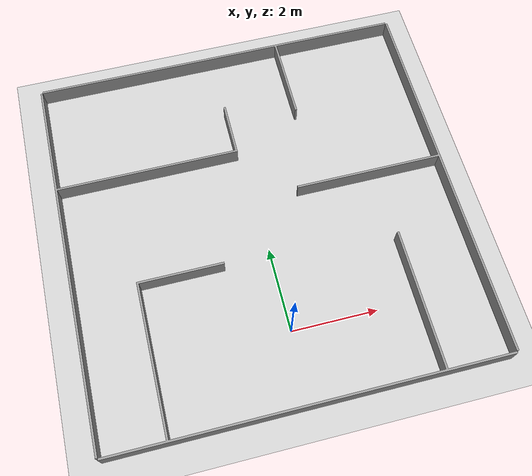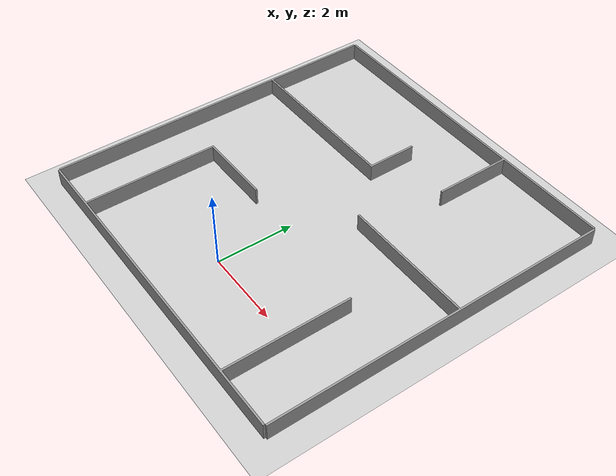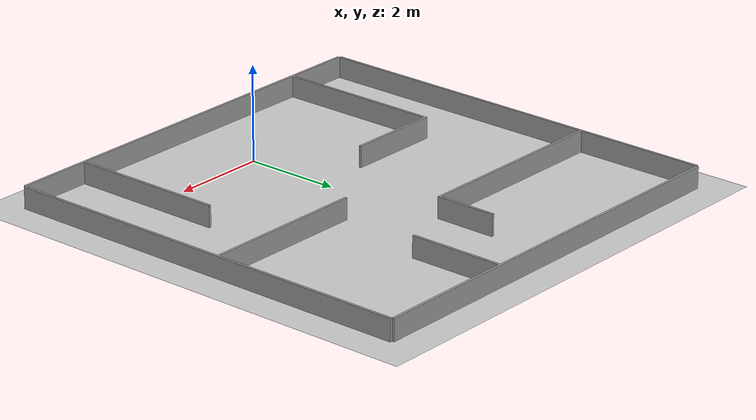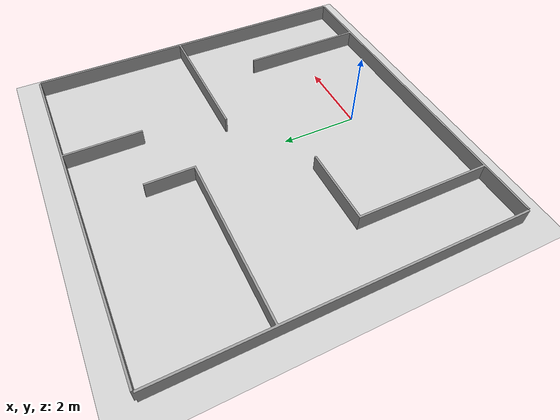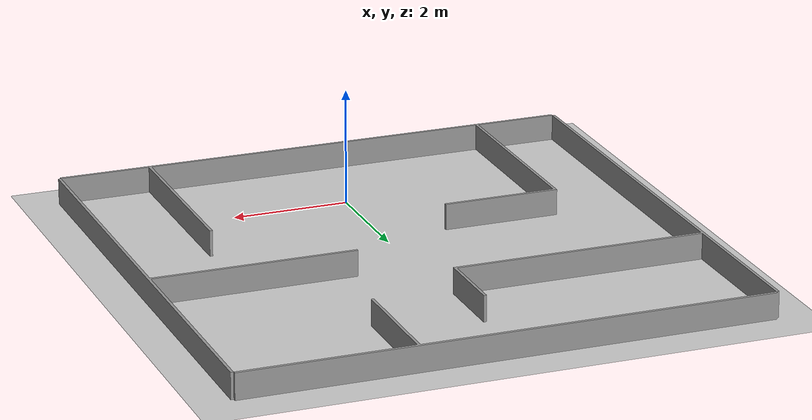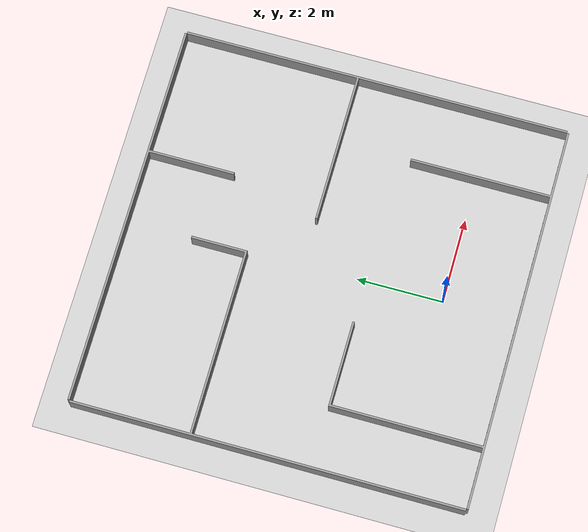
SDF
<?xml version='1.0'?>
<sdf version='1.6'>
<world name="my_world">
    <light name='sun' type='directional'>
      <cast_shadows>1</cast_shadows>
      <pose frame=''>0 0 10 0 -0 0</pose>
      <diffuse>0.8 0.8 0.8 1</diffuse>
      <specular>0.2 0.2 0.2 1</specular>
      <attenuation>
        <range>1000</range>
        <constant>0.9</constant>
        <linear>0.01</linear>
        <quadratic>0.001</quadratic>
      </attenuation>
      <direction>-0.5 0.1 -0.9</direction>
    </light>
    <model name='ground_plane'>
      <static>1</static>
      <link name='link'>
        <collision name='collision'>
          <geometry>
            <plane>
              <normal>0 0 1</normal>
              <size>100 100</size>
            </plane>
          </geometry>
          <surface>
            <contact>
              <collide_bitmask>65535</collide_bitmask>
              <ode/>
            </contact>
            <friction>
              <ode>
                <mu>100</mu>
                <mu2>50</mu2>
              </ode>
              <torsional>
                <ode/>
              </torsional>
            </friction>
            <bounce/>
          </surface>
          <max_contacts>10</max_contacts>
        </collision>
        <visual name='visual'>
          <cast_shadows>0</cast_shadows>
          <geometry>
            <plane>
              <normal>0 0 1</normal>
              <size>100 100</size>
            </plane>
          </geometry>
          <material>
            <script>
              <uri>file://media/materials/scripts/gazebo.material</uri>
              <name>Gazebo/Grey</name>
            </script>
          </material>
        </visual>
        <self_collide>0</self_collide>
        <kinematic>0</kinematic>
      </link>
    </model>
    <gravity>0 0 -9.8</gravity>
    <magnetic_field>6e-06 2.3e-05 -4.2e-05</magnetic_field>
    <atmosphere type='adiabatic'/>
    <physics name='default_physics' default='0' type='ode'>
      <max_step_size>0.001</max_step_size>
      <real_time_factor>1</real_time_factor>
      <real_time_update_rate>1000</real_time_update_rate>
    </physics>
    <scene>
      <ambient>0.4 0.4 0.4 1</ambient>
      <background>0.7 0.7 0.7 1</background>
      <shadows>1</shadows>
    </scene>
    <spherical_coordinates>
      <surface_model>EARTH_WGS84</surface_model>
      <latitude_deg>0</latitude_deg>
      <longitude_deg>0</longitude_deg>
      <elevation>0</elevation>
      <heading_deg>0</heading_deg>
    </spherical_coordinates>

    <!--模型 -->
    <model name='test_environment_1'>
      <static>1</static>
      <link name='link_0'>
        <inertial>
          <mass>1</mass>
          <inertia>
            <ixx>0.166667</ixx>
            <ixy>0</ixy>
            <ixz>0</ixz>
            <iyy>0.166667</iyy>
            <iyz>0</iyz>
            <izz>0.166667</izz>
          </inertia>
        </inertial>
        <pose frame=''>0 -0 0 0 -0 0</pose>
        <visual name='visual'>
          <pose frame=''>0 0 0 0 -0 0</pose>
          <geometry>
            <mesh>
              <uri>/home/wind/test_environment_1.stl</uri>
              <scale>1 1 1</scale>
            </mesh>
          </geometry>
          <material>
            <lighting>1</lighting>
            <script>
              <uri>file://media/materials/scripts/gazebo.material</uri>
              <name>Gazebo/Grey</name>
            </script>
          </material>
          <transparency>0</transparency>
          <cast_shadows>1</cast_shadows>
        </visual>
        <collision name='collision'>
          <laser_retro>0</laser_retro>
          <max_contacts>10</max_contacts>
          <pose frame=''>0 0 0 0 -0 0</pose>
          <geometry>
            <mesh>
              <uri>/home/wind/test_environment_1.stl</uri>
              <scale>1 1 1</scale>
            </mesh>
          </geometry>
          <surface>
            <friction>
              <ode>
                <mu>1</mu>
                <mu2>1</mu2>
                <fdir1>0 0 0</fdir1>
                <slip1>0</slip1>
                <slip2>0</slip2>
              </ode>
              <torsional>
                <coefficient>1</coefficient>
                <patch_radius>0</patch_radius>
                <surface_radius>0</surface_radius>
                <use_patch_radius>1</use_patch_radius>
                <ode>
                  <slip>0</slip>
                </ode>
              </torsional>
            </friction>
            <bounce>
              <restitution_coefficient>0</restitution_coefficient>
              <threshold>1e+06</threshold>
            </bounce>
            <contact>
              <collide_without_contact>0</collide_without_contact>
              <collide_without_contact_bitmask>1</collide_without_contact_bitmask>
              <collide_bitmask>1</collide_bitmask>
              <ode>
                <soft_cfm>0</soft_cfm>
                <soft_erp>0.2</soft_erp>
                <kp>1e+13</kp>
                <kd>1</kd>
                <max_vel>0.01</max_vel>
                <min_depth>0</min_depth>
              </ode>
              <bullet>
                <split_impulse>1</split_impulse>
                <split_impulse_penetration_threshold>-0.01</split_impulse_penetration_threshold>
                <soft_cfm>0</soft_cfm>
                <soft_erp>0.2</soft_erp>
                <kp>1e+13</kp>
                <kd>1</kd>
              </bullet>
            </contact>
          </surface>
        </collision>
      </link>
      <static>1</static>
      <allow_auto_disable>1</allow_auto_disable>
    </model>

  </world>
</sdf>
